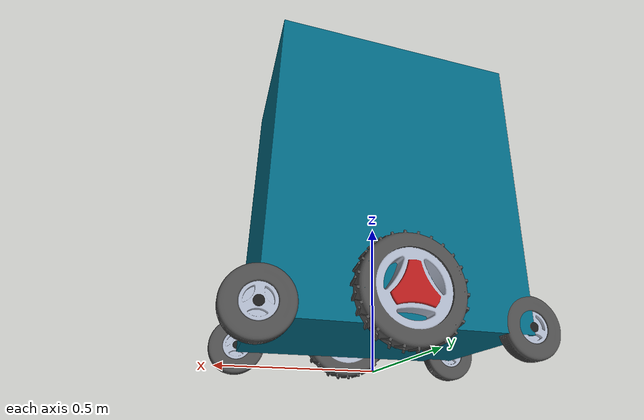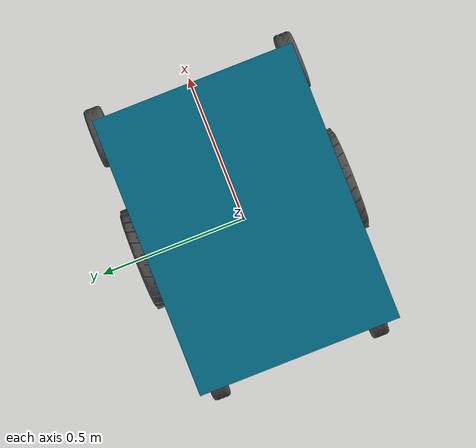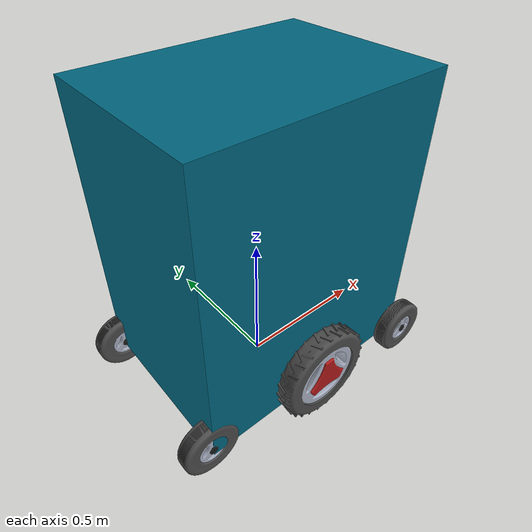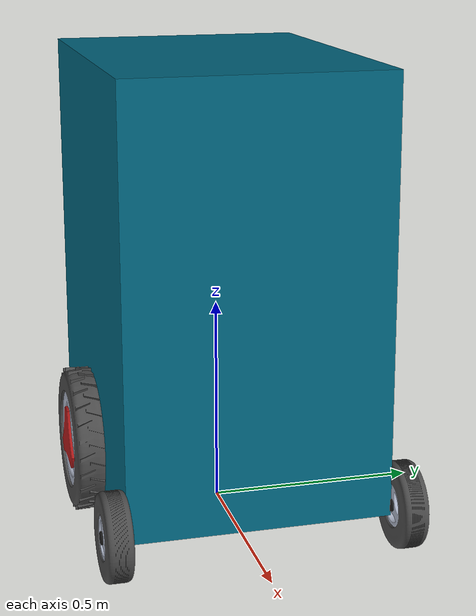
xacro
<?xml version="1.0"?>

<robot xmlns:xacro="http://www.ros.org/wiki/xacro" name="wheelchair">
  <xacro:property name="PI" value="3.14159265359" />

  <xacro:property name="chair_width" value="0.6096" /> <!-- 24 inches-->
  <xacro:property name="chair_length" value="0.8382" /> <!-- 33 inches -->
  <xacro:property name="chair_height" value="1.012" /> <!-- From front wheel joint to head rest -->
  <xacro:property name="chair_weight" value="130" />

  <xacro:property name="main_wheel_length" value="0.062" />
  <xacro:property name="main_wheel_radius" value=".1651" /> <!-- 13 inches-->
  <xacro:property name="main_wheel_weight" value="2.0" />

  <xacro:property name="small_wheel_radius" value=".089" /> <!-- 7 inches-->
  <xacro:property name="small_wheel_length" value=".055" />
  <xacro:property name="small_wheel_weight" value="1.0" />

  <xacro:macro name="box_intertia" params="height length width weight" >
    <inertia ixx="${1/12 * weight * (height + length)}" ixy="0" ixz="0" iyy="${1/12 * weight * (width + length)}" iyz="0" izz="${1/12 * weight * (width + height)}" />
  </xacro:macro>

  <xacro:macro name="cylinder_intertia" params="length radius weight" >
    <inertia ixx="${1/12 * weight * (3 * radius * radius + length * length)}" ixy="0" ixz="0" iyy="${1/12 * weight * (3 * radius*radius + length*length)}" iyz="0" izz="${1/2 * weight * radius*radius}" />
  </xacro:macro>

  <link name="base_link">
    <visual>
      <origin xyz="0 0 ${chair_height/2 + small_wheel_radius}" rpy="0 0 0" />
      <geometry>
        <box size="${chair_length} ${chair_width} ${chair_height} "/>
      </geometry>
      <material name="white">
        <color rgba="0 0.4 0.5 1"/>
      </material>
    </visual>
    <collision>
      <geometry>
        <box size="${chair_length} ${chair_width} ${chair_height}"/>
      </geometry>
    </collision>
    <inertial>
      <mass value="${chair_weight}"/>
      <xacro:box_intertia height="${chair_height}" length="${chair_length}" width="${chair_width}" weight="${chair_weight}" />
    </inertial>
  </link>

<!--Main Wheels -->

  <joint name="right_main_wheel_joint" type="continuous">
    <axis xyz="0 0 -1"/>
    <parent link="base_link"/>
    <child link="right_main_wheel"/>
    <origin rpy="0 0 0" xyz="0.0 ${chair_width/2 + main_wheel_length/2} ${main_wheel_radius + 0.02}"/>
  </joint>

  <link name="right_main_wheel">
    <visual>
      <geometry>
        <mesh filename="package://luci_third_party/meshes/main_wheel.dae" scale="1 1 1" />
      </geometry>
    </visual>
    <collision>
      <geometry>
        <cylinder length="${main_wheel_length}" radius="${main_wheel_radius}"/>
      </geometry>
    </collision>
    <inertial>
      <mass value="${main_wheel_weight}"/>
      <xacro:cylinder_intertia length="${main_wheel_length}" radius="${main_wheel_radius}" weight="${main_wheel_weight}" />
    </inertial>
  </link>

  <joint name="left_main_wheel_joint" type="continuous">
    <axis xyz="0 0 -1"/>
    <parent link="base_link"/>
    <child link="left_main_wheel"/>
    <origin rpy="0 0 0" xyz="0.0 -${chair_width/2 + main_wheel_length/2} ${main_wheel_radius + 0.02}"/>
  </joint>

  <link name="left_main_wheel">
    <visual>
      <geometry>
        <mesh filename="package://luci_third_party/meshes/main_wheel.dae" scale="1 1 1" />
      </geometry>
    </visual>
    <collision>
      <geometry>
        <cylinder length="${main_wheel_length}" radius="${main_wheel_radius}"/>
      </geometry>
    </collision>
    <inertial>
      <mass value="${main_wheel_weight}"/>
      <xacro:cylinder_intertia length="${main_wheel_length}" radius="${main_wheel_radius}" weight="${main_wheel_weight}" />
    </inertial>
  </link>

<!--Front Wheels -->
  <joint name="front_right_wheel_joint" type="continuous">
    <axis xyz="0 0 1"/>
    <parent link="base_link"/>
    <child link="front_right_wheel"/>
    <origin rpy="0  0 0" xyz="${chair_length/2} ${chair_width/2 + small_wheel_length/2} ${small_wheel_radius + 0.025}"/>
    <dynamics damping="0.0" friction="0.5" />
  </joint>

  <link name="front_right_wheel">
    <visual>
      <geometry>
        <mesh filename="package://luci_third_party/meshes/caster_wheels.dae" scale="1 1 1" />
      </geometry>
    </visual>
    <collision>
      <geometry>
        <cylinder length="${small_wheel_length}" radius="${small_wheel_radius}"/>
      </geometry>
      <surface>
        <friction>
          <ode>
            <mu>1.0</mu>
            <mu2>1.0</mu2>
          </ode>
        </friction>
      </surface>
    </collision>
    <inertial>
      <mass value="${small_wheel_weight}"/>
      <xacro:cylinder_intertia length="${small_wheel_length}" radius="${small_wheel_radius}" weight="${small_wheel_weight}" />
    </inertial>
  </link>

  <joint name="front_left_wheel_joint" type="continuous">
    <axis xyz="0 0 1"/>
    <parent link="base_link"/>
    <child link="front_left_wheel"/>
    <origin rpy="0 0 0" xyz="${chair_length/2} -${chair_width/2 + small_wheel_length/2} ${small_wheel_radius + 0.025}"/>
    <dynamics damping="0" friction="0.5" />
  </joint>

  <link name="front_left_wheel">
    <visual>
      <geometry>
        <mesh filename="package://luci_third_party/meshes/caster_wheels.dae" scale="1 1 1" />
      </geometry>
    </visual>
    <collision>
      <geometry>
        <cylinder length="0.05" radius="${small_wheel_radius}"/>
      </geometry>
      <surface>
        <friction>
          <ode>
            <mu>1.0</mu>
            <mu2>1.0</mu2>
          </ode>
        </friction>
      </surface>
    </collision>
    <inertial>
      <mass value="${small_wheel_weight}"/>
      <xacro:cylinder_intertia length="${small_wheel_length}" radius="${small_wheel_radius}" weight="${small_wheel_weight}" />
    </inertial>
  </link>
<!--Rear Wheels -->

  <joint name="rear_right_wheel_joint" type="continuous">
    <axis xyz="0 0 1"/>
    <parent link="base_link"/>
    <child link="rear_right_wheel"/>
    <origin rpy="0 0 0" xyz="-${chair_length/2} ${chair_width/2 - small_wheel_length/2} ${small_wheel_radius + 0.025}"/>
    <dynamics damping="0" friction="0.5" />
  </joint>

  <link name="rear_right_wheel">
    <visual>
      <geometry>
        <mesh filename="package://luci_third_party/meshes/caster_wheels.dae" scale="1 1 1" />
      </geometry>
    </visual>
    <collision>
      <geometry>
        <cylinder length="0.05" radius="${small_wheel_radius}"/>
      </geometry>
      <surface>
        <friction>
          <ode>
            <mu>1.0</mu>
            <mu2>1.0</mu2>
          </ode>
        </friction>
      </surface>
    </collision>
    <inertial>
      <mass value="${small_wheel_weight}"/>
      <xacro:cylinder_intertia length="${small_wheel_length}" radius="${small_wheel_radius}" weight="${small_wheel_weight}" />
    </inertial>
  </link>

  <joint name="rear_left_wheel_joint" type="continuous">
    <axis xyz="0 0 1"/>
    <parent link="base_link"/>
    <child link="rear_left_wheel"/>
    <origin rpy="0 0 0" xyz="-${chair_length/2} -${chair_width/2 - small_wheel_length/2} ${small_wheel_radius + 0.025}"/>
    <dynamics damping="0" friction="0.5" />
  </joint>

  <link name="rear_left_wheel">
    <visual>
      <geometry>
        <mesh filename="package://luci_third_party/meshes/caster_wheels.dae" scale="1 1 1" />
      </geometry>
    </visual>
    <collision>
      <geometry>
        <cylinder length="0.05" radius="${small_wheel_radius}"/>
      </geometry>
      <surface>
        <friction>
          <ode>
            <mu>1.0</mu>
            <mu2>1.0</mu2>
          </ode>
        </friction>
      </surface>
    </collision>
    <inertial>
      <mass value="${small_wheel_weight}"/>
      <xacro:cylinder_intertia length="${small_wheel_length}" radius="${small_wheel_radius}" weight="${small_wheel_weight}" />
    </inertial>
  </link>
</robot>
